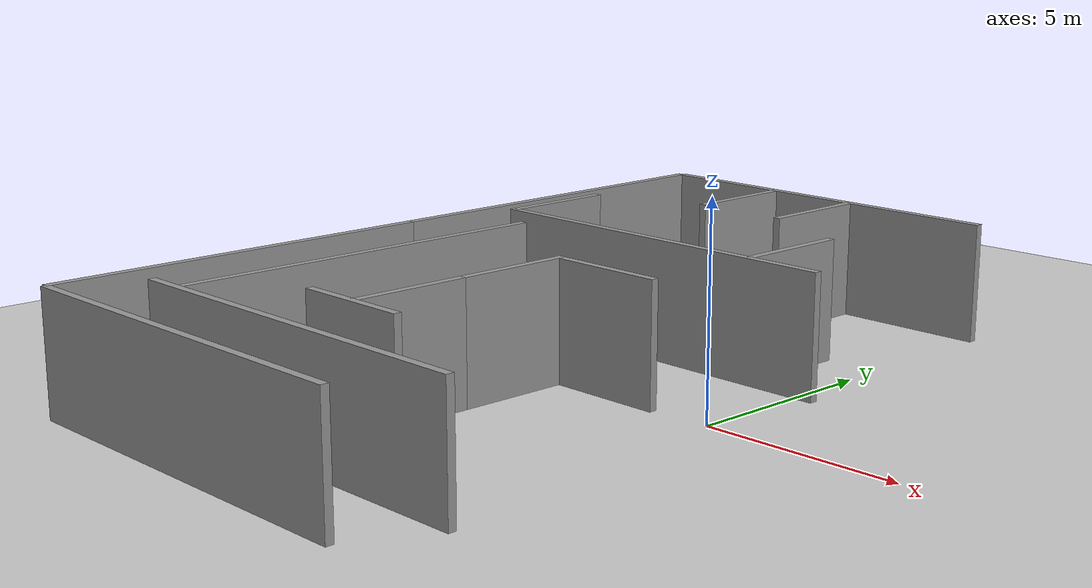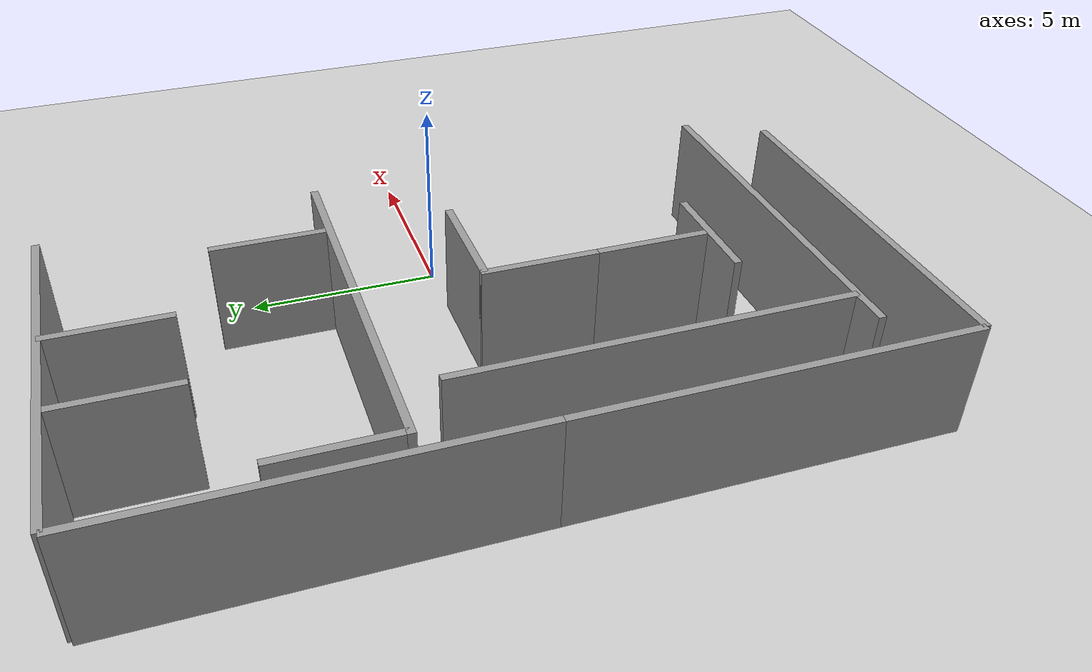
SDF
<sdf version="1.7">
 <world name="default">
  <model name="ground_plane">
   <static>1</static>
   <link name="link">
    <collision name="collision">
     <geometry><plane><normal>0 0 1</normal><size>100 100</size></plane></geometry>
     <surface><friction><ode><mu>100</mu><mu2>50</mu2></ode></friction></surface>
    </collision>
    <visual name="visual">
     <cast_shadows>0</cast_shadows>
     <geometry><plane><normal>0 0 1</normal><size>100 100</size></plane></geometry>
     <material>
      <script><uri>file://media/materials/scripts/gazebo.material</uri><name>Gazebo/Grey</name></script>
     </material>
    </visual>
   </link>
  </model>
  <model name="wall_10x3_clone">
   <link name="link">
    <inertial>
     <mass>1</mass>
     <inertia>
      <ixx>0.166667</ixx>
      <ixy>0</ixy>
      <ixz>0</ixz>
      <iyy>0.166667</iyy>
      <iyz>0</iyz>
      <izz>0.166667</izz>
     </inertia>
    </inertial>
    <visual name="visual">
     <geometry><box><size>10 0.2 3</size></box></geometry>
     <material>
      <script><name>Gazebo/Grey</name><uri>file://media/materials/scripts/gazebo.material</uri></script>
      <shader type="pixel"><normal_map>__default__</normal_map></shader>
      <ambient>0.3 0.3 0.3 1</ambient>
      <diffuse>0.7 0.7 0.7 1</diffuse>
      <specular>0.01 0.01 0.01 1</specular>
      <emissive>0 0 0 1</emissive>
     </material>
    </visual>
    <collision name="collision">
     <geometry><box><size>10 0.2 3</size></box></geometry>
     <surface>
      <friction>
       <ode><mu>1</mu><mu2>1</mu2><fdir1>0 0 0</fdir1><slip1>0</slip1><slip2>0</slip2></ode>
       <torsional>
        <coefficient>1</coefficient>
        <patch_radius>0</patch_radius>
        <surface_radius>0</surface_radius>
        <use_patch_radius>1</use_patch_radius>
        <ode><slip>0</slip></ode>
       </torsional>
      </friction>
      <bounce><restitution_coefficient>0</restitution_coefficient><threshold>1e+06</threshold></bounce>
      <contact>
       <collide_without_contact>0</collide_without_contact>
       <collide_without_contact_bitmask>1</collide_without_contact_bitmask>
       <collide_bitmask>1</collide_bitmask>
       <ode>
        <soft_cfm>0</soft_cfm>
        <soft_erp>0.2</soft_erp>
        <kp>1e+13</kp>
        <kd>1</kd>
        <max_vel>0.01</max_vel>
        <min_depth>0</min_depth>
       </ode>
       <bullet>
        <split_impulse>1</split_impulse>
        <split_impulse_penetration_threshold>-0.01</split_impulse_penetration_threshold>
        <soft_cfm>0</soft_cfm>
        <soft_erp>0.2</soft_erp>
        <kp>1e+13</kp>
        <kd>1</kd>
       </bullet>
      </contact>
     </surface>
    </collision>
   </link>
   <static>1</static>
   <pose>-5 10 1.5 0 -0 0</pose>
  </model>
  <model name="wall_10x3_clone_0">
   <link name="link">
    <inertial>
     <mass>1</mass>
     <inertia>
      <ixx>0.166667</ixx>
      <ixy>0</ixy>
      <ixz>0</ixz>
      <iyy>0.166667</iyy>
      <iyz>0</iyz>
      <izz>0.166667</izz>
     </inertia>
    </inertial>
    <visual name="visual">
     <geometry><box><size>10 0.2 3</size></box></geometry>
     <material>
      <script><name>Gazebo/Grey</name><uri>file://media/materials/scripts/gazebo.material</uri></script>
      <shader type="pixel"><normal_map>__default__</normal_map></shader>
      <ambient>0.3 0.3 0.3 1</ambient>
      <diffuse>0.7 0.7 0.7 1</diffuse>
      <specular>0.01 0.01 0.01 1</specular>
      <emissive>0 0 0 1</emissive>
     </material>
    </visual>
    <collision name="collision">
     <geometry><box><size>10 0.2 3</size></box></geometry>
     <surface>
      <friction>
       <ode><mu>1</mu><mu2>1</mu2><fdir1>0 0 0</fdir1><slip1>0</slip1><slip2>0</slip2></ode>
       <torsional>
        <coefficient>1</coefficient>
        <patch_radius>0</patch_radius>
        <surface_radius>0</surface_radius>
        <use_patch_radius>1</use_patch_radius>
        <ode><slip>0</slip></ode>
       </torsional>
      </friction>
      <bounce><restitution_coefficient>0</restitution_coefficient><threshold>1e+06</threshold></bounce>
      <contact>
       <collide_without_contact>0</collide_without_contact>
       <collide_without_contact_bitmask>1</collide_without_contact_bitmask>
       <collide_bitmask>1</collide_bitmask>
       <ode>
        <soft_cfm>0</soft_cfm>
        <soft_erp>0.2</soft_erp>
        <kp>1e+13</kp>
        <kd>1</kd>
        <max_vel>0.01</max_vel>
        <min_depth>0</min_depth>
       </ode>
       <bullet>
        <split_impulse>1</split_impulse>
        <split_impulse_penetration_threshold>-0.01</split_impulse_penetration_threshold>
        <soft_cfm>0</soft_cfm>
        <soft_erp>0.2</soft_erp>
        <kp>1e+13</kp>
        <kd>1</kd>
       </bullet>
      </contact>
     </surface>
    </collision>
   </link>
   <static>1</static>
   <pose>-5 -10 1.5 0 -0 0</pose>
  </model>
  <model name="wall_10x3_clone_3">
   <link name="link">
    <inertial>
     <mass>1</mass>
     <inertia>
      <ixx>0.166667</ixx>
      <ixy>0</ixy>
      <ixz>0</ixz>
      <iyy>0.166667</iyy>
      <iyz>0</iyz>
      <izz>0.166667</izz>
     </inertia>
    </inertial>
    <visual name="visual">
     <geometry><box><size>10 0.2 3</size></box></geometry>
     <material>
      <script><name>Gazebo/Grey</name><uri>file://media/materials/scripts/gazebo.material</uri></script>
      <shader type="pixel"><normal_map>__default__</normal_map></shader>
      <ambient>0.3 0.3 0.3 1</ambient>
      <diffuse>0.7 0.7 0.7 1</diffuse>
      <specular>0.01 0.01 0.01 1</specular>
      <emissive>0 0 0 1</emissive>
     </material>
    </visual>
    <collision name="collision">
     <geometry><box><size>10 0.2 3</size></box></geometry>
     <surface>
      <friction>
       <ode><mu>1</mu><mu2>1</mu2><fdir1>0 0 0</fdir1><slip1>0</slip1><slip2>0</slip2></ode>
       <torsional>
        <coefficient>1</coefficient>
        <patch_radius>0</patch_radius>
        <surface_radius>0</surface_radius>
        <use_patch_radius>1</use_patch_radius>
        <ode><slip>0</slip></ode>
       </torsional>
      </friction>
      <bounce><restitution_coefficient>0</restitution_coefficient><threshold>1e+06</threshold></bounce>
      <contact>
       <collide_without_contact>0</collide_without_contact>
       <collide_without_contact_bitmask>1</collide_without_contact_bitmask>
       <collide_bitmask>1</collide_bitmask>
       <ode>
        <soft_cfm>0</soft_cfm>
        <soft_erp>0.2</soft_erp>
        <kp>1e+13</kp>
        <kd>1</kd>
        <max_vel>0.01</max_vel>
        <min_depth>0</min_depth>
       </ode>
       <bullet>
        <split_impulse>1</split_impulse>
        <split_impulse_penetration_threshold>-0.01</split_impulse_penetration_threshold>
        <soft_cfm>0</soft_cfm>
        <soft_erp>0.2</soft_erp>
        <kp>1e+13</kp>
        <kd>1</kd>
       </bullet>
      </contact>
     </surface>
    </collision>
   </link>
   <static>1</static>
   <pose>-10 -5 1.5 0 -0 1.5708</pose>
  </model>
  <model name="wall_10x3_clone_3_clone">
   <link name="link">
    <inertial>
     <mass>1</mass>
     <inertia>
      <ixx>0.166667</ixx>
      <ixy>0</ixy>
      <ixz>0</ixz>
      <iyy>0.166667</iyy>
      <iyz>0</iyz>
      <izz>0.166667</izz>
     </inertia>
    </inertial>
    <visual name="visual">
     <geometry><box><size>10 0.2 3</size></box></geometry>
     <material>
      <script><name>Gazebo/Grey</name><uri>file://media/materials/scripts/gazebo.material</uri></script>
      <shader type="pixel"><normal_map>__default__</normal_map></shader>
      <ambient>0.3 0.3 0.3 1</ambient>
      <diffuse>0.7 0.7 0.7 1</diffuse>
      <specular>0.01 0.01 0.01 1</specular>
      <emissive>0 0 0 1</emissive>
     </material>
    </visual>
    <collision name="collision">
     <geometry><box><size>10 0.2 3</size></box></geometry>
     <surface>
      <friction>
       <ode><mu>1</mu><mu2>1</mu2><fdir1>0 0 0</fdir1><slip1>0</slip1><slip2>0</slip2></ode>
       <torsional>
        <coefficient>1</coefficient>
        <patch_radius>0</patch_radius>
        <surface_radius>0</surface_radius>
        <use_patch_radius>1</use_patch_radius>
        <ode><slip>0</slip></ode>
       </torsional>
      </friction>
      <bounce><restitution_coefficient>0</restitution_coefficient><threshold>1e+06</threshold></bounce>
      <contact>
       <collide_without_contact>0</collide_without_contact>
       <collide_without_contact_bitmask>1</collide_without_contact_bitmask>
       <collide_bitmask>1</collide_bitmask>
       <ode>
        <soft_cfm>0</soft_cfm>
        <soft_erp>0.2</soft_erp>
        <kp>1e+13</kp>
        <kd>1</kd>
        <max_vel>0.01</max_vel>
        <min_depth>0</min_depth>
       </ode>
       <bullet>
        <split_impulse>1</split_impulse>
        <split_impulse_penetration_threshold>-0.01</split_impulse_penetration_threshold>
        <soft_cfm>0</soft_cfm>
        <soft_erp>0.2</soft_erp>
        <kp>1e+13</kp>
        <kd>1</kd>
       </bullet>
      </contact>
     </surface>
    </collision>
   </link>
   <static>1</static>
   <pose>-10 5 1.5 0 -0 1.5708</pose>
  </model>
  <model name="wall_10x3_clone_2_clone">
   <link name="link">
    <inertial>
     <mass>1</mass>
     <inertia>
      <ixx>0.166667</ixx>
      <ixy>0</ixy>
      <ixz>0</ixz>
      <iyy>0.166667</iyy>
      <iyz>0</iyz>
      <izz>0.166667</izz>
     </inertia>
    </inertial>
    <visual name="visual">
     <geometry><box><size>10 0.2 3</size></box></geometry>
     <material>
      <script><name>Gazebo/Grey</name><uri>file://media/materials/scripts/gazebo.material</uri></script>
      <shader type="pixel"><normal_map>__default__</normal_map></shader>
      <ambient>0.3 0.3 0.3 1</ambient>
      <diffuse>0.7 0.7 0.7 1</diffuse>
      <specular>0.01 0.01 0.01 1</specular>
      <emissive>0 0 0 1</emissive>
     </material>
    </visual>
    <collision name="collision">
     <geometry><box><size>10 0.2 3</size></box></geometry>
     <surface>
      <friction>
       <ode><mu>1</mu><mu2>1</mu2><fdir1>0 0 0</fdir1><slip1>0</slip1><slip2>0</slip2></ode>
       <torsional>
        <coefficient>1</coefficient>
        <patch_radius>0</patch_radius>
        <surface_radius>0</surface_radius>
        <use_patch_radius>1</use_patch_radius>
        <ode><slip>0</slip></ode>
       </torsional>
      </friction>
      <bounce><restitution_coefficient>0</restitution_coefficient><threshold>1e+06</threshold></bounce>
      <contact>
       <collide_without_contact>0</collide_without_contact>
       <collide_without_contact_bitmask>1</collide_without_contact_bitmask>
       <collide_bitmask>1</collide_bitmask>
       <ode>
        <soft_cfm>0</soft_cfm>
        <soft_erp>0.2</soft_erp>
        <kp>1e+13</kp>
        <kd>1</kd>
        <max_vel>0.01</max_vel>
        <min_depth>0</min_depth>
       </ode>
       <bullet>
        <split_impulse>1</split_impulse>
        <split_impulse_penetration_threshold>-0.01</split_impulse_penetration_threshold>
        <soft_cfm>0</soft_cfm>
        <soft_erp>0.2</soft_erp>
        <kp>1e+13</kp>
        <kd>1</kd>
       </bullet>
      </contact>
     </surface>
    </collision>
   </link>
   <static>1</static>
   <pose>-4 -8 1.5 0 -0 0</pose>
  </model>
  <model name="wall_10x3_clone_2_clone_0">
   <link name="link">
    <inertial>
     <mass>1</mass>
     <inertia>
      <ixx>0.166667</ixx>
      <ixy>0</ixy>
      <ixz>0</ixz>
      <iyy>0.166667</iyy>
      <iyz>0</iyz>
      <izz>0.166667</izz>
     </inertia>
    </inertial>
    <visual name="visual">
     <geometry><box><size>10 0.2 3</size></box></geometry>
     <material>
      <script><name>Gazebo/Grey</name><uri>file://media/materials/scripts/gazebo.material</uri></script>
      <shader type="pixel"><normal_map>__default__</normal_map></shader>
      <ambient>0.3 0.3 0.3 1</ambient>
      <diffuse>0.7 0.7 0.7 1</diffuse>
      <specular>0.01 0.01 0.01 1</specular>
      <emissive>0 0 0 1</emissive>
     </material>
    </visual>
    <collision name="collision">
     <geometry><box><size>10 0.2 3</size></box></geometry>
     <surface>
      <friction>
       <ode><mu>1</mu><mu2>1</mu2><fdir1>0 0 0</fdir1><slip1>0</slip1><slip2>0</slip2></ode>
       <torsional>
        <coefficient>1</coefficient>
        <patch_radius>0</patch_radius>
        <surface_radius>0</surface_radius>
        <use_patch_radius>1</use_patch_radius>
        <ode><slip>0</slip></ode>
       </torsional>
      </friction>
      <bounce><restitution_coefficient>0</restitution_coefficient><threshold>1e+06</threshold></bounce>
      <contact>
       <collide_without_contact>0</collide_without_contact>
       <collide_without_contact_bitmask>1</collide_without_contact_bitmask>
       <collide_bitmask>1</collide_bitmask>
       <ode>
        <soft_cfm>0</soft_cfm>
        <soft_erp>0.2</soft_erp>
        <kp>1e+13</kp>
        <kd>1</kd>
        <max_vel>0.01</max_vel>
        <min_depth>0</min_depth>
       </ode>
       <bullet>
        <split_impulse>1</split_impulse>
        <split_impulse_penetration_threshold>-0.01</split_impulse_penetration_threshold>
        <soft_cfm>0</soft_cfm>
        <soft_erp>0.2</soft_erp>
        <kp>1e+13</kp>
        <kd>1</kd>
       </bullet>
      </contact>
     </surface>
    </collision>
   </link>
   <static>1</static>
   <pose>-4.5 3 1.5 0 -0 0</pose>
  </model>
  <model name="wall_10x3_clone_3_clone_0_clone_clone_clone_clone_clone_0">
   <link name="link">
    <inertial>
     <mass>1</mass>
     <inertia>
      <ixx>0.166667</ixx>
      <ixy>0</ixy>
      <ixz>0</ixz>
      <iyy>0.166667</iyy>
      <iyz>0</iyz>
      <izz>0.166667</izz>
     </inertia>
    </inertial>
    <visual name="visual">
     <geometry><box><size>3 0.2 3</size></box></geometry>
     <material>
      <script><name>Gazebo/Grey</name><uri>file://media/materials/scripts/gazebo.material</uri></script>
      <shader type="pixel"><normal_map>__default__</normal_map></shader>
      <ambient>0.3 0.3 0.3 1</ambient>
      <diffuse>0.7 0.7 0.7 1</diffuse>
      <specular>0.01 0.01 0.01 1</specular>
      <emissive>0 0 0 1</emissive>
     </material>
    </visual>
    <collision name="collision">
     <geometry><box><size>3 0.2 3</size></box></geometry>
     <surface>
      <friction>
       <ode><mu>1</mu><mu2>1</mu2><fdir1>0 0 0</fdir1><slip1>0</slip1><slip2>0</slip2></ode>
       <torsional>
        <coefficient>1</coefficient>
        <patch_radius>0</patch_radius>
        <surface_radius>0</surface_radius>
        <use_patch_radius>1</use_patch_radius>
        <ode><slip>0</slip></ode>
       </torsional>
      </friction>
      <bounce><restitution_coefficient>0</restitution_coefficient><threshold>1e+06</threshold></bounce>
      <contact>
       <collide_without_contact>0</collide_without_contact>
       <collide_without_contact_bitmask>1</collide_without_contact_bitmask>
       <collide_bitmask>1</collide_bitmask>
       <ode>
        <soft_cfm>0</soft_cfm>
        <soft_erp>0.2</soft_erp>
        <kp>1e+13</kp>
        <kd>1</kd>
        <max_vel>0.01</max_vel>
        <min_depth>0</min_depth>
       </ode>
       <bullet>
        <split_impulse>1</split_impulse>
        <split_impulse_penetration_threshold>-0.01</split_impulse_penetration_threshold>
        <soft_cfm>0</soft_cfm>
        <soft_erp>0.2</soft_erp>
        <kp>1e+13</kp>
        <kd>1</kd>
       </bullet>
      </contact>
     </surface>
    </collision>
   </link>
   <static>1</static>
   <pose>-4.5 -6 1.5 0 -0 0</pose>
  </model>
  <model name="wall_10x3_clone_3_clone_0_clone_clone_clone_clone_4">
   <link name="link">
    <inertial>
     <mass>1</mass>
     <inertia>
      <ixx>0.166667</ixx>
      <ixy>0</ixy>
      <ixz>0</ixz>
      <iyy>0.166667</iyy>
      <iyz>0</iyz>
      <izz>0.166667</izz>
     </inertia>
    </inertial>
    <visual name="visual">
     <geometry><box><size>3 0.2 3</size></box></geometry>
     <material>
      <script><name>Gazebo/Grey</name><uri>file://media/materials/scripts/gazebo.material</uri></script>
      <shader type="pixel"><normal_map>__default__</normal_map></shader>
      <ambient>0.3 0.3 0.3 1</ambient>
      <diffuse>0.7 0.7 0.7 1</diffuse>
      <specular>0.01 0.01 0.01 1</specular>
      <emissive>0 0 0 1</emissive>
     </material>
    </visual>
    <collision name="collision">
     <geometry><box><size>3 0.2 3</size></box></geometry>
     <surface>
      <friction>
       <ode><mu>1</mu><mu2>1</mu2><fdir1>0 0 0</fdir1><slip1>0</slip1><slip2>0</slip2></ode>
       <torsional>
        <coefficient>1</coefficient>
        <patch_radius>0</patch_radius>
        <surface_radius>0</surface_radius>
        <use_patch_radius>1</use_patch_radius>
        <ode><slip>0</slip></ode>
       </torsional>
      </friction>
      <bounce><restitution_coefficient>0</restitution_coefficient><threshold>1e+06</threshold></bounce>
      <contact>
       <collide_without_contact>0</collide_without_contact>
       <collide_without_contact_bitmask>1</collide_without_contact_bitmask>
       <collide_bitmask>1</collide_bitmask>
       <ode>
        <soft_cfm>0</soft_cfm>
        <soft_erp>0.2</soft_erp>
        <kp>1e+13</kp>
        <kd>1</kd>
        <max_vel>0.01</max_vel>
        <min_depth>0</min_depth>
       </ode>
       <bullet>
        <split_impulse>1</split_impulse>
        <split_impulse_penetration_threshold>-0.01</split_impulse_penetration_threshold>
        <soft_cfm>0</soft_cfm>
        <soft_erp>0.2</soft_erp>
        <kp>1e+13</kp>
        <kd>1</kd>
       </bullet>
      </contact>
     </surface>
    </collision>
   </link>
   <static>1</static>
   <pose>-1.5 4.5 1.5 0 -0 1.5708</pose>
  </model>
  <model name="wall_10x3_clone_3_clone_0_clone_clone_clone_clone_6_clone">
   <link name="link">
    <inertial>
     <mass>1</mass>
     <inertia>
      <ixx>0.166667</ixx>
      <ixy>0</ixy>
      <ixz>0</ixz>
      <iyy>0.166667</iyy>
      <iyz>0</iyz>
      <izz>0.166667</izz>
     </inertia>
    </inertial>
    <visual name="visual">
     <geometry><box><size>3 0.2 3</size></box></geometry>
     <material>
      <script><name>Gazebo/Grey</name><uri>file://media/materials/scripts/gazebo.material</uri></script>
      <shader type="pixel"><normal_map>__default__</normal_map></shader>
      <ambient>0.3 0.3 0.3 1</ambient>
      <diffuse>0.7 0.7 0.7 1</diffuse>
      <specular>0.01 0.01 0.01 1</specular>
      <emissive>0 0 0 1</emissive>
     </material>
    </visual>
    <collision name="collision">
     <geometry><box><size>3 0.2 3</size></box></geometry>
     <surface>
      <friction>
       <ode><mu>1</mu><mu2>1</mu2><fdir1>0 0 0</fdir1><slip1>0</slip1><slip2>0</slip2></ode>
       <torsional>
        <coefficient>1</coefficient>
        <patch_radius>0</patch_radius>
        <surface_radius>0</surface_radius>
        <use_patch_radius>1</use_patch_radius>
        <ode><slip>0</slip></ode>
       </torsional>
      </friction>
      <bounce><restitution_coefficient>0</restitution_coefficient><threshold>1e+06</threshold></bounce>
      <contact>
       <collide_without_contact>0</collide_without_contact>
       <collide_without_contact_bitmask>1</collide_without_contact_bitmask>
       <collide_bitmask>1</collide_bitmask>
       <ode>
        <soft_cfm>0</soft_cfm>
        <soft_erp>0.2</soft_erp>
        <kp>1e+13</kp>
        <kd>1</kd>
        <max_vel>0.01</max_vel>
        <min_depth>0</min_depth>
       </ode>
       <bullet>
        <split_impulse>1</split_impulse>
        <split_impulse_penetration_threshold>-0.01</split_impulse_penetration_threshold>
        <soft_cfm>0</soft_cfm>
        <soft_erp>0.2</soft_erp>
        <kp>1e+13</kp>
        <kd>1</kd>
       </bullet>
      </contact>
     </surface>
    </collision>
   </link>
   <static>1</static>
   <pose>-9.4 4.5 1.5 0 -0 1.5708</pose>
  </model>
  <model name="wall_10x3_clone_3_clone_0_clone_clone_clone_clone_6_clone_0">
   <link name="link">
    <inertial>
     <mass>1</mass>
     <inertia>
      <ixx>0.166667</ixx>
      <ixy>0</ixy>
      <ixz>0</ixz>
      <iyy>0.166667</iyy>
      <iyz>0</iyz>
      <izz>0.166667</izz>
     </inertia>
    </inertial>
    <visual name="visual">
     <geometry><box><size>3 0.2 3</size></box></geometry>
     <material>
      <script><name>Gazebo/Grey</name><uri>file://media/materials/scripts/gazebo.material</uri></script>
      <shader type="pixel"><normal_map>__default__</normal_map></shader>
      <ambient>0.3 0.3 0.3 1</ambient>
      <diffuse>0.7 0.7 0.7 1</diffuse>
      <specular>0.01 0.01 0.01 1</specular>
      <emissive>0 0 0 1</emissive>
     </material>
    </visual>
    <collision name="collision">
     <geometry><box><size>3 0.2 3</size></box></geometry>
     <surface>
      <friction>
       <ode><mu>1</mu><mu2>1</mu2><fdir1>0 0 0</fdir1><slip1>0</slip1><slip2>0</slip2></ode>
       <torsional>
        <coefficient>1</coefficient>
        <patch_radius>0</patch_radius>
        <surface_radius>0</surface_radius>
        <use_patch_radius>1</use_patch_radius>
        <ode><slip>0</slip></ode>
       </torsional>
      </friction>
      <bounce><restitution_coefficient>0</restitution_coefficient><threshold>1e+06</threshold></bounce>
      <contact>
       <collide_without_contact>0</collide_without_contact>
       <collide_without_contact_bitmask>1</collide_without_contact_bitmask>
       <collide_bitmask>1</collide_bitmask>
       <ode>
        <soft_cfm>0</soft_cfm>
        <soft_erp>0.2</soft_erp>
        <kp>1e+13</kp>
        <kd>1</kd>
        <max_vel>0.01</max_vel>
        <min_depth>0</min_depth>
       </ode>
       <bullet>
        <split_impulse>1</split_impulse>
        <split_impulse_penetration_threshold>-0.01</split_impulse_penetration_threshold>
        <soft_cfm>0</soft_cfm>
        <soft_erp>0.2</soft_erp>
        <kp>1e+13</kp>
        <kd>1</kd>
       </bullet>
      </contact>
     </surface>
    </collision>
   </link>
   <static>1</static>
   <pose>-4 8.5 1.5 0 -0 1.5708</pose>
  </model>
  <model name="wall_10x3_clone_3_clone_0_clone_clone_clone_clone_6_clone_1">
   <link name="link">
    <inertial>
     <mass>1</mass>
     <inertia>
      <ixx>0.166667</ixx>
      <ixy>0</ixy>
      <ixz>0</ixz>
      <iyy>0.166667</iyy>
      <iyz>0</iyz>
      <izz>0.166667</izz>
     </inertia>
    </inertial>
    <visual name="visual">
     <geometry><box><size>3 0.2 3</size></box></geometry>
     <material>
      <script><name>Gazebo/Grey</name><uri>file://media/materials/scripts/gazebo.material</uri></script>
      <shader type="pixel"><normal_map>__default__</normal_map></shader>
      <ambient>0.3 0.3 0.3 1</ambient>
      <diffuse>0.7 0.7 0.7 1</diffuse>
      <specular>0.01 0.01 0.01 1</specular>
      <emissive>0 0 0 1</emissive>
     </material>
    </visual>
    <collision name="collision">
     <geometry><box><size>3 0.2 3</size></box></geometry>
     <surface>
      <friction>
       <ode><mu>1</mu><mu2>1</mu2><fdir1>0 0 0</fdir1><slip1>0</slip1><slip2>0</slip2></ode>
       <torsional>
        <coefficient>1</coefficient>
        <patch_radius>0</patch_radius>
        <surface_radius>0</surface_radius>
        <use_patch_radius>1</use_patch_radius>
        <ode><slip>0</slip></ode>
       </torsional>
      </friction>
      <bounce><restitution_coefficient>0</restitution_coefficient><threshold>1e+06</threshold></bounce>
      <contact>
       <collide_without_contact>0</collide_without_contact>
       <collide_without_contact_bitmask>1</collide_without_contact_bitmask>
       <collide_bitmask>1</collide_bitmask>
       <ode>
        <soft_cfm>0</soft_cfm>
        <soft_erp>0.2</soft_erp>
        <kp>1e+13</kp>
        <kd>1</kd>
        <max_vel>0.01</max_vel>
        <min_depth>0</min_depth>
       </ode>
       <bullet>
        <split_impulse>1</split_impulse>
        <split_impulse_penetration_threshold>-0.01</split_impulse_penetration_threshold>
        <soft_cfm>0</soft_cfm>
        <soft_erp>0.2</soft_erp>
        <kp>1e+13</kp>
        <kd>1</kd>
       </bullet>
      </contact>
     </surface>
    </collision>
   </link>
   <static>1</static>
   <pose>-6.5 8.5 1.5 0 -0 1.5708</pose>
  </model>
  <model name="wall_10x3_clone_3_clone_0_clone_clone_clone_0">
   <link name="link">
    <inertial>
     <mass>1</mass>
     <inertia>
      <ixx>0.166667</ixx>
      <ixy>0</ixy>
      <ixz>0</ixz>
      <iyy>0.166667</iyy>
      <iyz>0</iyz>
      <izz>0.166667</izz>
     </inertia>
    </inertial>
    <visual name="visual">
     <geometry><box><size>10 0.2 3</size></box></geometry>
     <material>
      <script><name>Gazebo/Grey</name><uri>file://media/materials/scripts/gazebo.material</uri></script>
      <shader type="pixel"><normal_map>__default__</normal_map></shader>
      <ambient>0.3 0.3 0.3 1</ambient>
      <diffuse>0.7 0.7 0.7 1</diffuse>
      <specular>0.01 0.01 0.01 1</specular>
      <emissive>0 0 0 1</emissive>
     </material>
    </visual>
    <collision name="collision">
     <geometry><box><size>10 0.2 3</size></box></geometry>
     <surface>
      <friction>
       <ode><mu>1</mu><mu2>1</mu2><fdir1>0 0 0</fdir1><slip1>0</slip1><slip2>0</slip2></ode>
       <torsional>
        <coefficient>1</coefficient>
        <patch_radius>0</patch_radius>
        <surface_radius>0</surface_radius>
        <use_patch_radius>1</use_patch_radius>
        <ode><slip>0</slip></ode>
       </torsional>
      </friction>
      <bounce><restitution_coefficient>0</restitution_coefficient><threshold>1e+06</threshold></bounce>
      <contact>
       <collide_without_contact>0</collide_without_contact>
       <collide_without_contact_bitmask>1</collide_without_contact_bitmask>
       <collide_bitmask>1</collide_bitmask>
       <ode>
        <soft_cfm>0</soft_cfm>
        <soft_erp>0.2</soft_erp>
        <kp>1e+13</kp>
        <kd>1</kd>
        <max_vel>0.01</max_vel>
        <min_depth>0</min_depth>
       </ode>
       <bullet>
        <split_impulse>1</split_impulse>
        <split_impulse_penetration_threshold>-0.01</split_impulse_penetration_threshold>
        <soft_cfm>0</soft_cfm>
        <soft_erp>0.2</soft_erp>
        <kp>1e+13</kp>
        <kd>1</kd>
       </bullet>
      </contact>
     </surface>
    </collision>
   </link>
   <static>1</static>
   <pose>-8 -3 1.5 0 -0 1.5708</pose>
  </model>
  <model name="wall_10x3_clone_3_clone_0_clone_clone_clone_clone_6_clone_7">
   <link name="link">
    <inertial>
     <mass>1</mass>
     <inertia>
      <ixx>0.166667</ixx>
      <ixy>0</ixy>
      <ixz>0</ixz>
      <iyy>0.166667</iyy>
      <iyz>0</iyz>
      <izz>0.166667</izz>
     </inertia>
    </inertial>
    <visual name="visual">
     <geometry><box><size>3 0.2 3</size></box></geometry>
     <material>
      <script><name>Gazebo/Grey</name><uri>file://media/materials/scripts/gazebo.material</uri></script>
      <shader type="pixel"><normal_map>__default__</normal_map></shader>
      <ambient>0.3 0.3 0.3 1</ambient>
      <diffuse>0.7 0.7 0.7 1</diffuse>
      <specular>0.01 0.01 0.01 1</specular>
      <emissive>0 0 0 1</emissive>
     </material>
    </visual>
    <collision name="collision">
     <geometry><box><size>3 0.2 3</size></box></geometry>
     <surface>
      <friction>
       <ode><mu>1</mu><mu2>1</mu2><fdir1>0 0 0</fdir1><slip1>0</slip1><slip2>0</slip2></ode>
       <torsional>
        <coefficient>1</coefficient>
        <patch_radius>0</patch_radius>
        <surface_radius>0</surface_radius>
        <use_patch_radius>1</use_patch_radius>
        <ode><slip>0</slip></ode>
       </torsional>
      </friction>
      <bounce><restitution_coefficient>0</restitution_coefficient><threshold>1e+06</threshold></bounce>
      <contact>
       <collide_without_contact>0</collide_without_contact>
       <collide_without_contact_bitmask>1</collide_without_contact_bitmask>
       <collide_bitmask>1</collide_bitmask>
       <ode>
        <soft_cfm>0</soft_cfm>
        <soft_erp>0.2</soft_erp>
        <kp>1e+13</kp>
        <kd>1</kd>
        <max_vel>0.01</max_vel>
        <min_depth>0</min_depth>
       </ode>
       <bullet>
        <split_impulse>1</split_impulse>
        <split_impulse_penetration_threshold>-0.01</split_impulse_penetration_threshold>
        <soft_cfm>0</soft_cfm>
        <soft_erp>0.2</soft_erp>
        <kp>1e+13</kp>
        <kd>1</kd>
       </bullet>
      </contact>
     </surface>
    </collision>
   </link>
   <static>1</static>
   <pose>-4.5 -4.5 1.5 0 -0 1.5708</pose>
  </model>
  <model name="wall_10x3_clone_3_clone_0_clone_clone_clone_clone_6_clone_8">
   <link name="link">
    <inertial>
     <mass>1</mass>
     <inertia>
      <ixx>0.166667</ixx>
      <ixy>0</ixy>
      <ixz>0</ixz>
      <iyy>0.166667</iyy>
      <iyz>0</iyz>
      <izz>0.166667</izz>
     </inertia>
    </inertial>
    <visual name="visual">
     <geometry><box><size>3 0.2 3</size></box></geometry>
     <material>
      <script><name>Gazebo/Grey</name><uri>file://media/materials/scripts/gazebo.material</uri></script>
      <shader type="pixel"><normal_map>__default__</normal_map></shader>
      <ambient>0.3 0.3 0.3 1</ambient>
      <diffuse>0.7 0.7 0.7 1</diffuse>
      <specular>0.01 0.01 0.01 1</specular>
      <emissive>0 0 0 1</emissive>
     </material>
    </visual>
    <collision name="collision">
     <geometry><box><size>3 0.2 3</size></box></geometry>
     <surface>
      <friction>
       <ode><mu>1</mu><mu2>1</mu2><fdir1>0 0 0</fdir1><slip1>0</slip1><slip2>0</slip2></ode>
       <torsional>
        <coefficient>1</coefficient>
        <patch_radius>0</patch_radius>
        <surface_radius>0</surface_radius>
        <use_patch_radius>1</use_patch_radius>
        <ode><slip>0</slip></ode>
       </torsional>
      </friction>
      <bounce><restitution_coefficient>0</restitution_coefficient><threshold>1e+06</threshold></bounce>
      <contact>
       <collide_without_contact>0</collide_without_contact>
       <collide_without_contact_bitmask>1</collide_without_contact_bitmask>
       <collide_bitmask>1</collide_bitmask>
       <ode>
        <soft_cfm>0</soft_cfm>
        <soft_erp>0.2</soft_erp>
        <kp>1e+13</kp>
        <kd>1</kd>
        <max_vel>0.01</max_vel>
        <min_depth>0</min_depth>
       </ode>
       <bullet>
        <split_impulse>1</split_impulse>
        <split_impulse_penetration_threshold>-0.01</split_impulse_penetration_threshold>
        <soft_cfm>0</soft_cfm>
        <soft_erp>0.2</soft_erp>
        <kp>1e+13</kp>
        <kd>1</kd>
       </bullet>
      </contact>
     </surface>
    </collision>
   </link>
   <static>1</static>
   <pose>-4.5 -1.5 1.5 0 -0 1.5708</pose>
  </model>
  <model name="wall_10x3_clone_3_clone_0_clone_clone_clone_clone_clone_1">
   <link name="link">
    <inertial>
     <mass>1</mass>
     <inertia>
      <ixx>0.166667</ixx>
      <ixy>0</ixy>
      <ixz>0</ixz>
      <iyy>0.166667</iyy>
      <iyz>0</iyz>
      <izz>0.166667</izz>
     </inertia>
    </inertial>
    <visual name="visual">
     <geometry><box><size>3 0.2 3</size></box></geometry>
     <material>
      <script><name>Gazebo/Grey</name><uri>file://media/materials/scripts/gazebo.material</uri></script>
      <shader type="pixel"><normal_map>__default__</normal_map></shader>
      <ambient>0.3 0.3 0.3 1</ambient>
      <diffuse>0.7 0.7 0.7 1</diffuse>
      <specular>0.01 0.01 0.01 1</specular>
      <emissive>0 0 0 1</emissive>
     </material>
    </visual>
    <collision name="collision">
     <geometry><box><size>3 0.2 3</size></box></geometry>
     <surface>
      <friction>
       <ode><mu>1</mu><mu2>1</mu2><fdir1>0 0 0</fdir1><slip1>0</slip1><slip2>0</slip2></ode>
       <torsional>
        <coefficient>1</coefficient>
        <patch_radius>0</patch_radius>
        <surface_radius>0</surface_radius>
        <use_patch_radius>1</use_patch_radius>
        <ode><slip>0</slip></ode>
       </torsional>
      </friction>
      <bounce><restitution_coefficient>0</restitution_coefficient><threshold>1e+06</threshold></bounce>
      <contact>
       <collide_without_contact>0</collide_without_contact>
       <collide_without_contact_bitmask>1</collide_without_contact_bitmask>
       <collide_bitmask>1</collide_bitmask>
       <ode>
        <soft_cfm>0</soft_cfm>
        <soft_erp>0.2</soft_erp>
        <kp>1e+13</kp>
        <kd>1</kd>
        <max_vel>0.01</max_vel>
        <min_depth>0</min_depth>
       </ode>
       <bullet>
        <split_impulse>1</split_impulse>
        <split_impulse_penetration_threshold>-0.01</split_impulse_penetration_threshold>
        <soft_cfm>0</soft_cfm>
        <soft_erp>0.2</soft_erp>
        <kp>1e+13</kp>
        <kd>1</kd>
       </bullet>
      </contact>
     </surface>
    </collision>
   </link>
   <static>1</static>
   <pose>-3 -0.1 1.5 0 -0 0</pose>
  </model>
 </world>
</sdf>
